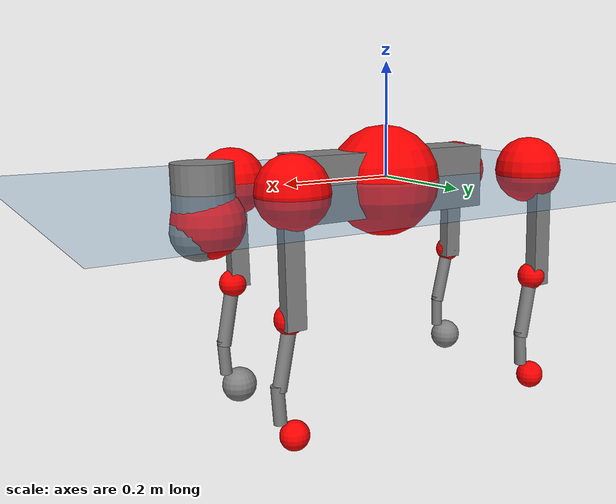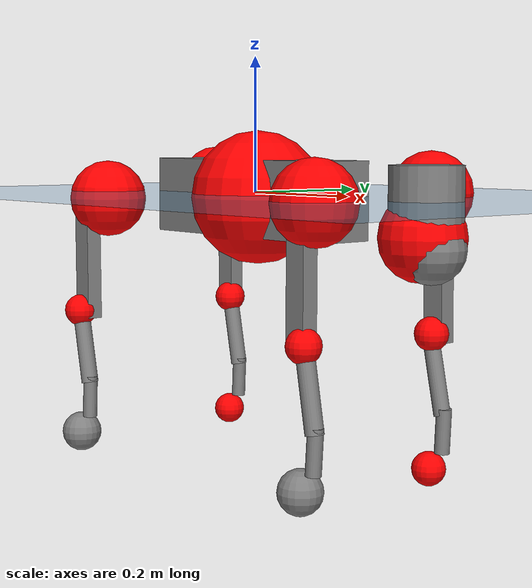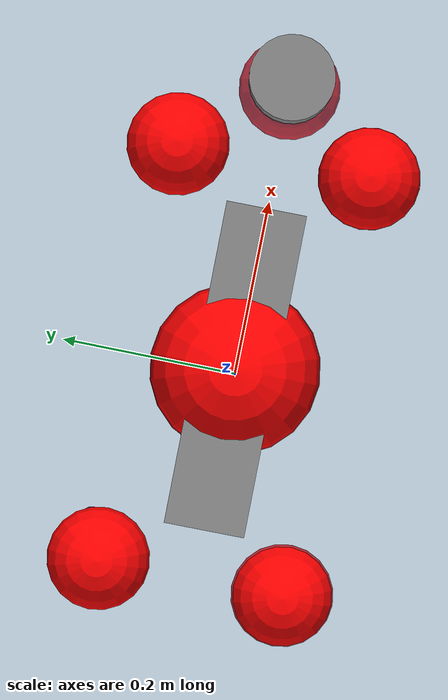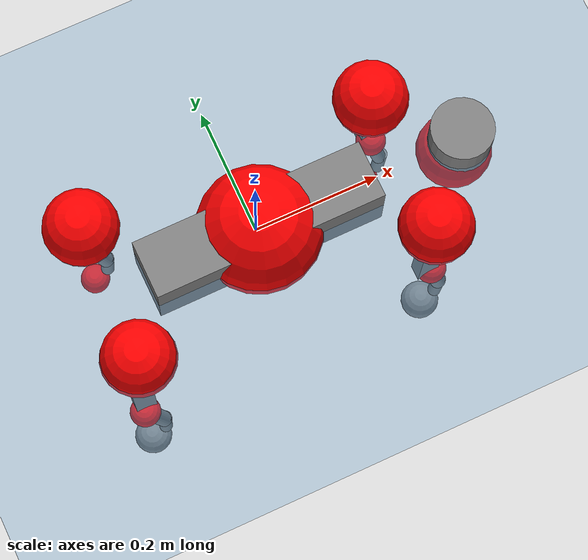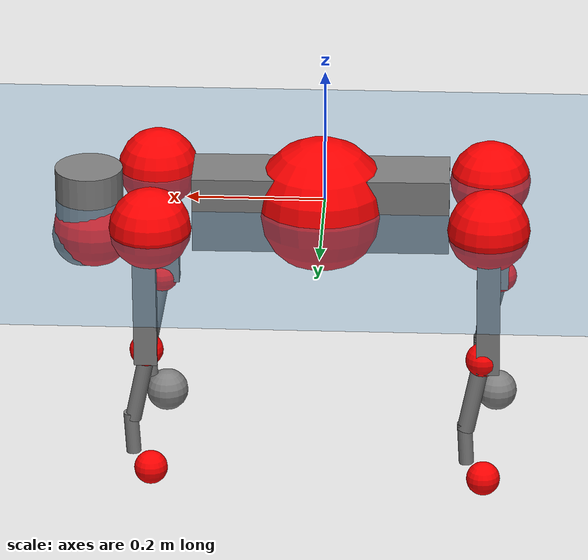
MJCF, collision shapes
<mujoco model="go2">
  <compiler angle="radian" assetdir="assets" balanceinertia="true" inertiafromgeom="false"/>

  <option timestep="0.005" density="1.2" viscosity="2e-05"/>

  <size nkey="1"/>

  <visual>
    <quality shadowsize="8192"/>
    <map shadowclip="0.5"/>
  </visual>

  <default>
    <default class="/">
      <geom contype="0" conaffinity="0" group="1" solref="-1000 -80"/>
      <site size="0.01 0.005 0.005" group="5"/>
      <general forcelimited="true" biastype="affine" gainprm="20" biasprm="0 -20 -0.5"/>
      <default class="go2">
        <joint armature="0.01" damping="0.01" frictionloss="0.2"/>
        <geom condim="1" margin="0.001"/>
        <default class="visual">
          <geom type="mesh" group="2"/>
        </default>
        <default class="collision">
          <geom group="3"/>
          <default class="foot">
            <geom size="0.022 0 0" condim="6" priority="1" friction="0.8 0.02 0.01" solimp="0.015 1 0.022"/>
          </default>
        </default>
        <default class="reward_collision_sphere">
          <geom group="5" rgba="1 0 0 1"/>
        </default>
      </default>
    </default>
  </default>

  <asset>
    <texture type="skybox" colorspace="auto" name="//unnamed_texture_0" builtin="gradient" rgb1="0.95 0.95 0.95" rgb2="0.95 0.95 0.95" width="100" height="600"/>
    <texture type="2d" colorspace="auto" name="texplane" builtin="checker" rgb1="0.345 0.575 0.748" rgb2="0.345 0.575 0.748" markrgb="1 1 1" width="512" height="512"/>
    <material name="MatPlane" class="/" texture="texplane" texuniform="true" texrepeat="2 2" specular="0.9"/>
    <material name="metal" class="/" rgba="0.9 0.95 0.95 1"/>
    <material name="black" class="/" rgba="0 0 0 1"/>
    <material name="white" class="/"/>
    <material name="gray" class="/" rgba="0.671705 0.692426 0.77427 1"/>
    <mesh name="base_0" class="/" file="base_0.obj"/>
    <mesh name="base_1" class="/" file="base_1.obj"/>
    <mesh name="base_2" class="/" file="base_2.obj"/>
    <mesh name="base_3" class="/" file="base_3.obj"/>
    <mesh name="base_4" class="/" file="base_4.obj"/>
    <mesh name="hip_0" class="/" file="hip_0.obj"/>
    <mesh name="hip_1" class="/" file="hip_1.obj"/>
    <mesh name="thigh_0" class="/" file="thigh_0.obj"/>
    <mesh name="thigh_1" class="/" file="thigh_1.obj"/>
    <mesh name="thigh_mirror_0" class="/" file="thigh_mirror_0.obj"/>
    <mesh name="thigh_mirror_1" class="/" file="thigh_mirror_1.obj"/>
    <mesh name="calf_0" class="/" file="calf_0.obj"/>
    <mesh name="calf_1" class="/" file="calf_1.obj"/>
    <mesh name="calf_mirror_0" class="/" file="calf_mirror_0.obj"/>
    <mesh name="calf_mirror_1" class="/" file="calf_mirror_1.obj"/>
    <mesh name="foot" class="/" file="foot.obj"/>
  </asset>

  <worldbody>
    <geom name="floor" class="/" size="100 100 0.125" type="plane" group="0" material="MatPlane"/>
    <light name="toplight_shadow" class="/" pos="0 0 5" dir="0.0990148 0.0990148 -0.990148" type="directional" ambient="0.04 0.04 0.04" diffuse="0.55 0.55 0.55" specular="0.12 0.12 0.12"/>
    <light name="toplight_fill" class="/" pos="0 0 5" dir="0.0990148 0.0990148 -0.990148" type="directional" castshadow="false" ambient="0.04 0.04 0.04" diffuse="0.3 0.3 0.3" specular="0.08 0.08 0.08"/>
    <body name="trunk" childclass="go2" pos="0.00532113 0.000634828 -0.00663233" quat="0.999992 0.00141452 0.00211093 0.00302745">
      <inertial pos="0.0414286 0.0133775 0.00284565" quat="-0.0212134 0.718216 -0.0110643 0.695409" mass="5.22297" diaginertia="0.240051 0.0472516 0.013777"/>
      <joint name="//unnamed_joint_0" type="free" armature="0" damping="0" frictionloss="0"/>
      <geom name="//unnamed_geom_1" class="visual" material="black" mesh="base_0"/>
      <geom name="//unnamed_geom_2" class="visual" material="black" mesh="base_1"/>
      <geom name="//unnamed_geom_3" class="visual" material="black" mesh="base_2"/>
      <geom name="//unnamed_geom_4" class="visual" material="white" mesh="base_3"/>
      <geom name="//unnamed_geom_5" class="visual" material="gray" mesh="base_4"/>
      <geom name="trunk_1" class="collision" size="0.185216 0.0460331 0.0561259" type="box"/>
      <geom name="trunk_2" class="collision" size="0.0492333 0.0443099" pos="0.336426 0 0.00906137" type="cylinder"/>
      <geom name="trunk_3" class="collision" size="0.0462793" pos="0.34587 0 -0.0543682"/>
      <geom name="//unnamed_geom_9" class="reward_collision_sphere" size="0.0984665"/>
      <geom name="//unnamed_geom_10" class="reward_collision_sphere" size="0.0590799" pos="0.330524 0 -0.0407761"/>
      <site name="imu" pos="-0.102941 -0.00395549 0.110824" size="0.00984665"/>
      <camera name="track" pos="0 -1.73483 0" quat="0.707107 0.707107 0 0" mode="trackcom"/>
      <camera name="ego_camera" pos="0.368298 0 0.0407761" quat="-0.5 -0.5 0.5 0.5"/>
      <body name="FL_hip" pos="0.240222 0.0527595 0.0114979" quat="0.999999 -0.00103613 -0.000318107 -0.00119137">
        <inertial pos="-0.00640198 0.0134467 0.00218078" quat="0.493812 0.501403 0.507272 0.497413" mass="0.69576" diaginertia="0.00243241 0.000408163 0.000357088"/>
        <joint name="FL_hip_joint" pos="0 0 0" axis="0.999567 0.0286791 -0.00655785" stiffness="0.0525428" range="-1.06071 0.895853" armature="0.00927818" damping="0" frictionloss="0.301021"/>
        <geom name="//unnamed_geom_11" class="visual" material="metal" mesh="hip_0"/>
        <geom name="//unnamed_geom_12" class="visual" material="gray" mesh="hip_1"/>
        <geom name="//unnamed_geom_13" class="collision" size="0.0452946 0.0196933" pos="0 0.0693933 0" quat="0.707107 0.707107 0 0" type="cylinder"/>
        <geom name="//unnamed_geom_14" class="reward_collision_sphere" size="0.0590799" pos="0 0.0607191 0"/>
        <body name="FL_thigh" pos="0.00932696 0.0674946 -0.00841619" quat="0.999976 0.00575922 0.00092193 0.00381132">
          <inertial pos="-0.00551046 -0.0200161 -0.0387054" quat="0.857023 0.049843 -0.0282243 0.512085" mass="1.2879" diaginertia="0.013886 0.0035371 0.000511337"/>
          <joint name="FL_thigh_joint" pos="0 0 0" axis="0.0219721 0.999693 0.0114944" stiffness="0.00612311" range="-1.84092 3.28147" armature="0.012352" damping="0" frictionloss="0.288913"/>
          <geom name="//unnamed_geom_15" class="visual" material="metal" mesh="thigh_0"/>
          <geom name="//unnamed_geom_16" class="visual" material="gray" mesh="thigh_1"/>
          <geom name="//unnamed_geom_17" class="collision" size="0.104867 0.0120621 0.0167393" pos="0 0 -0.0965036" quat="0.707107 0 0.707107 0" type="box"/>
          <body name="FL_calf" pos="-0.000151125 -0.0138796 -0.188346" quat="0.999997 -0.00219748 0.00103055 -0.000352715">
            <inertial pos="0.00746784 -0.00501811 -0.119875" quat="0.709647 -0.000520263 -0.00301071 0.704551" mass="0.242341" diaginertia="0.00415998 0.000730428 3.21507e-05"/>
            <joint name="FL_calf_joint" pos="0 0 0" axis="-0.012232 0.999915 -0.0045418" stiffness="0.0656766" range="-2.93052 -0.84501" armature="0.0069773" damping="0" frictionloss="0.192996"/>
            <geom name="//unnamed_geom_18" class="visual" material="gray" mesh="calf_0"/>
            <geom name="//unnamed_geom_19" class="visual" material="black" mesh="calf_1"/>
            <geom name="FL_calf0" class="collision" size="0.011816 0.0590799" pos="0.00944354 0 -0.0543682" quat="0.994493 0 -0.104807 0" type="cylinder"/>
            <geom name="//unnamed_geom_21" class="collision" size="0.0108313 0.0320016" pos="0.0236089 0 -0.134108" quat="0.999688 0 0.0249974 0" type="cylinder"/>
            <geom name="//unnamed_geom_22" class="visual" pos="0 0 -0.193007" quat="1 0 0 0" material="black" mesh="foot"/>
            <geom name="FL_foot" class="foot" size="0.0216729" pos="-0.00236089 0 -0.193007"/>
            <geom name="//unnamed_geom_24" class="reward_collision_sphere" size="0.0246166"/>
            <geom name="//unnamed_geom_25" class="reward_collision_sphere" size="0.0246166" pos="-0.00236089 0 -0.193007"/>
            <site name="FL_foot" class="foot" pos="-0.00236089 0 -0.193007" size="0.00984665"/>
          </body>
        </body>
      </body>
      <body name="FR_hip" pos="0.243183 -0.0481716 0.00463176" quat="1 -0.000475744 -5.39072e-05 0.000433111">
        <inertial pos="0.00373448 0.0150749 0.0103182" quat="0.466116 0.463423 0.555954 0.508813" mass="0.632823" diaginertia="0.0022249 0.000228546 0.000319916"/>
        <joint name="FR_hip_joint" pos="0 0 0" axis="0.998096 -0.0587946 0.0186431" range="-1.12294 1.02864" armature="0.00907252" damping="0.0605938" frictionloss="0.128806"/>
        <geom name="//unnamed_geom_26" class="visual" pos="0 -3.3732e-10 -1.44684e-08" quat="4.63268e-05 1 0 0" material="metal" mesh="hip_0"/>
        <geom name="//unnamed_geom_27" class="visual" pos="0 -5.46837e-10 3.57858e-08" quat="4.63268e-05 1 0 0" material="gray" mesh="hip_1"/>
        <geom name="//unnamed_geom_28" class="collision" size="0.0452946 0.0196933" pos="0 -0.0693933 0" quat="0.707107 0.707107 0 0" type="cylinder"/>
        <geom name="//unnamed_geom_29" class="reward_collision_sphere" size="0.0590799" pos="0 -0.0607191 0"/>
        <body name="FR_thigh" pos="-0.00897572 -0.0739464 0.0128644" quat="0.999979 0.0024747 0.00489289 -0.00337196">
          <inertial pos="-0.0190589 0.0253403 -0.020289" quat="0.527405 0.000128411 0.119125 0.841222" mass="0.982483" diaginertia="0.0161734 0.00350303 0.00046192"/>
          <joint name="FR_thigh_joint" pos="0 0 0" axis="0.0140751 -0.999634 -0.0230946" stiffness="0.00437229" range="-3.62312 1.65758" armature="0.0144225" damping="0" frictionloss="0.12256"/>
          <geom name="//unnamed_geom_30" class="visual" material="metal" mesh="thigh_mirror_0"/>
          <geom name="//unnamed_geom_31" class="visual" material="gray" mesh="thigh_mirror_1"/>
          <geom name="//unnamed_geom_32" class="collision" size="0.104867 0.0120621 0.0167393" pos="0 0 -0.0965036" quat="0.707107 0 0.707107 0" type="box"/>
          <body name="FR_calf" pos="0.00961394 -0.00391567 -0.197157" quat="0.999989 -0.00439749 0.000776061 0.00141299">
            <inertial pos="0.0193318 0.000411414 -0.128351" quat="0.696476 0.00511911 -0.0750107 0.71363" mass="0.172227" diaginertia="0.00262879 0.000671246 2.76536e-05"/>
            <joint name="FR_calf_joint" pos="0 0 0" axis="-0.00706841 -0.999879 0.0138245" stiffness="0.0720206" range="1.13483 2.91716" armature="0.00318432" damping="0" frictionloss="0.118603"/>
            <geom name="//unnamed_geom_33" class="visual" material="gray" mesh="calf_mirror_0"/>
            <geom name="//unnamed_geom_34" class="visual" material="black" mesh="calf_mirror_1"/>
            <geom name="FR_calf0" class="collision" size="0.0128006 0.0590799" pos="0.0118044 0 -0.0543682" quat="0.995004 0 -0.0998334 0" type="cylinder"/>
            <geom name="//unnamed_geom_36" class="collision" size="0.0108313 0.0320016" pos="0.0236089 0 -0.134108" quat="0.999688 0 0.0249974 0" type="cylinder"/>
            <geom name="//unnamed_geom_37" class="visual" pos="0 0 -0.193007" quat="1 0 0 0" material="black" mesh="foot"/>
            <geom name="FR_foot" class="foot" size="0.0313962" pos="-0.00236089 0 -0.193007"/>
            <geom name="//unnamed_geom_39" class="reward_collision_sphere" size="0.0246166"/>
            <geom name="//unnamed_geom_40" class="reward_collision_sphere" size="0.0246166" pos="-0.00236089 0 -0.193007"/>
            <site name="FR_foot" class="foot" pos="-0.00236089 0 -0.193007" size="0.00984665"/>
          </body>
        </body>
      </body>
      <body name="RL_hip" pos="-0.241954 0.0512501 0.0133338" quat="1 0.000107828 -0.000249276 0.000607016">
        <inertial pos="0.00526339 -0.00913094 0.0152016" quat="0.553421 0.499392 0.474419 0.468252" mass="0.523628" diaginertia="0.00130196 0.000252093 0.000265297"/>
        <joint name="RL_hip_joint" pos="0 0 0" axis="-0.998101 -0.0269498 -0.055395" stiffness="0.0378077" range="-1.04292 0.913739" armature="0.0105215" damping="0.0779326" frictionloss="0.192549"/>
        <geom name="//unnamed_geom_41" class="visual" pos="-2.38964e-09 0 -4.68425e-07" quat="4.63268e-05 0 1 0" material="metal" mesh="hip_0"/>
        <geom name="//unnamed_geom_42" class="visual" pos="-3.8739e-09 0 -4.15427e-07" quat="4.63268e-05 0 1 0" material="gray" mesh="hip_1"/>
        <geom name="//unnamed_geom_43" class="collision" size="0.0452946 0.0196933" pos="0 0.0693933 0" quat="0.707107 0.707107 0 0" type="cylinder"/>
        <geom name="//unnamed_geom_44" class="reward_collision_sphere" size="0.0590799" pos="0 0.0607191 0"/>
        <body name="RL_thigh" pos="-0.000440841 0.0904206 -0.00795972" quat="0.999994 0.00227485 0.00252132 0.000762347">
          <inertial pos="0.0120715 -0.025841 -0.0143306" quat="0.829491 0.0841487 -0.0193989 0.551803" mass="1.36692" diaginertia="0.0186089 0.00281552 0.000557814"/>
          <joint name="RL_thigh_joint" pos="0 0 0" axis="-0.00188132 0.99999 0.0040869" range="-0.350479 4.74708" armature="0.0076398" damping="0.0664514" frictionloss="0.189054"/>
          <geom name="//unnamed_geom_45" class="visual" material="metal" mesh="thigh_0"/>
          <geom name="//unnamed_geom_46" class="visual" material="gray" mesh="thigh_1"/>
          <geom name="//unnamed_geom_47" class="collision" size="0.104867 0.0120621 0.0167393" pos="0 0 -0.0965036" quat="0.707107 0 0.707107 0" type="box"/>
          <body name="RL_calf" pos="0.0072903 -0.00702817 -0.186304" quat="1 0.000515207 0.000692546 -0.000198181">
            <inertial pos="-0.0012514 -0.0141577 -0.121835" quat="0.712187 -0.0327576 -0.0411425 0.700017" mass="0.180492" diaginertia="0.00306508 0.000474245 2.37631e-05"/>
            <joint name="RL_calf_joint" pos="0 0 0" axis="0.00981956 0.999949 0.00243206" range="-2.98752 -0.620414" armature="0.00266327" damping="0" frictionloss="0.322175"/>
            <geom name="//unnamed_geom_48" class="visual" material="gray" mesh="calf_0"/>
            <geom name="//unnamed_geom_49" class="visual" material="black" mesh="calf_1"/>
            <geom name="RL_calf0" class="collision" size="0.0128006 0.0590799" pos="0.0118044 0 -0.0543682" quat="0.995004 0 -0.0998334 0" type="cylinder"/>
            <geom name="//unnamed_geom_51" class="collision" size="0.0108313 0.0320016" pos="0.0236089 0 -0.134108" quat="0.999688 0 0.0249974 0" type="cylinder"/>
            <geom name="//unnamed_geom_52" class="visual" pos="0 0 -0.193007" quat="1 0 0 0" material="black" mesh="foot"/>
            <geom name="RL_foot" class="foot" size="0.015833" pos="-0.00236089 0 -0.193007"/>
            <geom name="//unnamed_geom_54" class="reward_collision_sphere" size="0.0246166"/>
            <geom name="//unnamed_geom_55" class="reward_collision_sphere" size="0.0246166" pos="-0.00236089 0 -0.193007"/>
            <site name="RL_foot" class="foot" pos="-0.00236089 0 -0.193007" size="0.00984665"/>
          </body>
        </body>
      </body>
      <body name="RR_hip" pos="-0.244825 -0.0419684 -0.00750051" quat="1 -9.75057e-05 -0.000904384 -0.000275822">
        <inertial pos="0.0160457 -0.0106999 0.0150559" quat="0.509465 0.530961 0.425009 0.527156" mass="0.654181" diaginertia="0.00245723 0.000350125 0.000348804"/>
        <joint name="RR_hip_joint" pos="0 0 0" axis="-0.997439 -0.014123 0.0701086" range="-0.770853 0.869023" armature="0.0137328" damping="0.0540696" frictionloss="0.200676"/>
        <geom name="//unnamed_geom_56" class="visual" pos="2.37881e-09 -3.3732e-10 -4.53957e-07" quat="2.14617e-09 4.63268e-05 4.63268e-05 -1" material="metal" mesh="hip_0"/>
        <geom name="//unnamed_geom_57" class="visual" pos="3.9007e-09 -5.46837e-10 -4.51212e-07" quat="2.14617e-09 4.63268e-05 4.63268e-05 -1" material="gray" mesh="hip_1"/>
        <geom name="//unnamed_geom_58" class="collision" size="0.0452946 0.0196933" pos="0 -0.0693933 0" quat="0.707107 0.707107 0 0" type="cylinder"/>
        <geom name="//unnamed_geom_59" class="reward_collision_sphere" size="0.0590799" pos="0 -0.0607191 0"/>
        <body name="RR_thigh" pos="-0.0153936 -0.0895034 0.0137592" quat="0.999979 -0.00182241 -0.00606122 0.00120774">
          <inertial pos="-0.00552941 0.00976893 -0.0346304" quat="0.550849 -0.0217816 0.0820516 0.830276" mass="1.41901" diaginertia="0.0176141 0.00332304 0.000628702"/>
          <joint name="RR_thigh_joint" pos="0 0 0" axis="-0.0194267 -0.999801 0.00455369" stiffness="0.0130599" range="-4.73133 0.645077" armature="0.0117842" damping="0" frictionloss="0.193914"/>
          <geom name="//unnamed_geom_60" class="visual" material="metal" mesh="thigh_mirror_0"/>
          <geom name="//unnamed_geom_61" class="visual" material="gray" mesh="thigh_mirror_1"/>
          <geom name="//unnamed_geom_62" class="collision" size="0.104867 0.0120621 0.0167393" pos="0 0 -0.0965036" quat="0.707107 0 0.707107 0" type="box"/>
          <body name="RR_calf" pos="-0.00493191 -0.0123738 -0.189306" quat="0.999973 -0.00360205 -0.00577493 -0.00258953">
            <inertial pos="-0.00506506 0.00842581 -0.133751" quat="0.691428 0.0519921 -0.00803099 0.720528" mass="0.218309" diaginertia="0.00381153 0.000709164 3.61777e-05"/>
            <joint name="RR_calf_joint" pos="0 0 0" axis="0.0263165 -0.99927 0.0276878" range="0.870008 2.44176" armature="0.0106854" damping="0" frictionloss="0.119401"/>
            <geom name="//unnamed_geom_63" class="visual" material="gray" mesh="calf_mirror_0"/>
            <geom name="//unnamed_geom_64" class="visual" material="black" mesh="calf_mirror_1"/>
            <geom name="RR_calf0" class="collision" size="0.0128006 0.0590799" pos="0.0118044 0 -0.0543682" quat="0.995004 0 -0.0998334 0" type="cylinder"/>
            <geom name="//unnamed_geom_66" class="collision" size="0.0108313 0.0320016" pos="0.0236089 0 -0.134108" quat="0.999688 0 0.0249974 0" type="cylinder"/>
            <geom name="//unnamed_geom_67" class="visual" pos="0 0 -0.193007" quat="1 0 0 0" material="black" mesh="foot"/>
            <geom name="RR_foot" class="foot" size="0.0304032" pos="-0.00236089 0 -0.193007"/>
            <geom name="//unnamed_geom_69" class="reward_collision_sphere" size="0.0246166"/>
            <geom name="//unnamed_geom_70" class="reward_collision_sphere" size="0.0246166" pos="-0.00236089 0 -0.193007"/>
            <site name="RR_foot" class="foot" pos="-0.00236089 0 -0.193007" size="0.00984665"/>
          </body>
        </body>
      </body>
    </body>
  </worldbody>

  <contact>
    <pair class="/" geom1="floor" geom2="FL_foot" name="//unnamed_contact_0"/>
    <pair class="/" geom1="floor" geom2="FR_foot" name="//unnamed_contact_1"/>
    <pair class="/" geom1="floor" geom2="RL_foot" name="//unnamed_contact_2"/>
    <pair class="/" geom1="floor" geom2="RR_foot" name="//unnamed_contact_3"/>
  </contact>

  <actuator>
    <general name="FL_hip" class="/" joint="FL_hip_joint" forcerange="-33.8572 33.8572" gainprm="24.3143" biasprm="0 -24.3143 -0.606438"/>
    <general name="FL_thigh" class="/" joint="FL_thigh_joint" forcerange="-36.5616 36.5616" gainprm="24.3143" biasprm="0 -24.3143 -0.606438"/>
    <general name="FL_calf" class="/" joint="FL_calf_joint" forcerange="-55.6053 55.6053" gainprm="24.3143" biasprm="0 -24.3143 -0.606438"/>
    <general name="FR_hip" class="/" joint="FR_hip_joint" forcerange="-22.672 22.672" gainprm="24.3143" biasprm="0 -24.3143 -0.606438"/>
    <general name="FR_thigh" class="/" joint="FR_thigh_joint" forcerange="-13.6622 13.6622" gainprm="24.3143" biasprm="0 -24.3143 -0.606438"/>
    <general name="FR_calf" class="/" joint="FR_calf_joint" forcerange="-52.0234 52.0234" gainprm="24.3143" biasprm="0 -24.3143 -0.606438"/>
    <general name="RL_hip" class="/" joint="RL_hip_joint" forcerange="-23.3789 23.3789" gainprm="24.3143" biasprm="0 -24.3143 -0.606438"/>
    <general name="RL_thigh" class="/" joint="RL_thigh_joint" forcerange="-33.3629 33.3629" gainprm="24.3143" biasprm="0 -24.3143 -0.606438"/>
    <general name="RL_calf" class="/" joint="RL_calf_joint" forcerange="-33.3621 33.3621" gainprm="24.3143" biasprm="0 -24.3143 -0.606438"/>
    <general name="RR_hip" class="/" joint="RR_hip_joint" forcerange="-26.2344 26.2344" gainprm="24.3143" biasprm="0 -24.3143 -0.606438"/>
    <general name="RR_thigh" class="/" joint="RR_thigh_joint" forcerange="-11.7246 11.7246" gainprm="24.3143" biasprm="0 -24.3143 -0.606438"/>
    <general name="RR_calf" class="/" joint="RR_calf_joint" forcerange="-36.9493 36.9493" gainprm="24.3143" biasprm="0 -24.3143 -0.606438"/>
  </actuator>

  <sensor>
    <gyro site="imu" name="imu_angular_velocity"/>
    <velocimeter site="imu" name="imu_linear_velocity"/>
    <framelinvel objtype="site" objname="FL_foot" name="FL_foot_global_linear_velocity"/>
    <framelinvel objtype="site" objname="FR_foot" name="FR_foot_global_linear_velocity"/>
    <framelinvel objtype="site" objname="RL_foot" name="RL_foot_global_linear_velocity"/>
    <framelinvel objtype="site" objname="RR_foot" name="RR_foot_global_linear_velocity"/>
  </sensor>

  <keyframe>
    <key name="home" qpos="0 0 0.325 1 0 0 0 0.1 0.8 -1.5 -0.1 -0.8 1.5 -0.1 0.8 -1.5 0.1 -0.8 1.5"/>
  </keyframe>
</mujoco>
